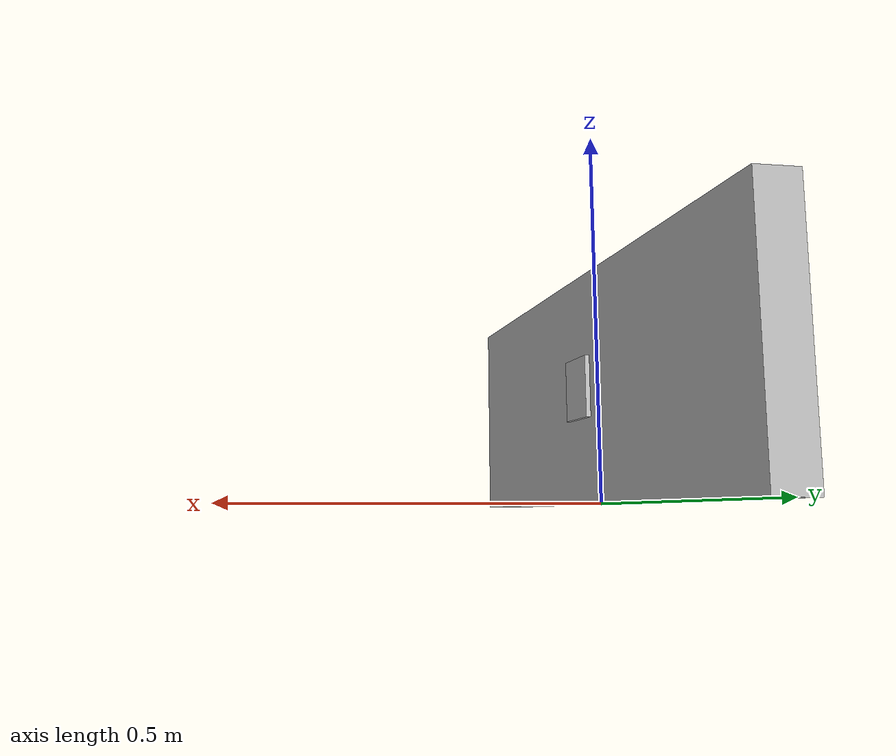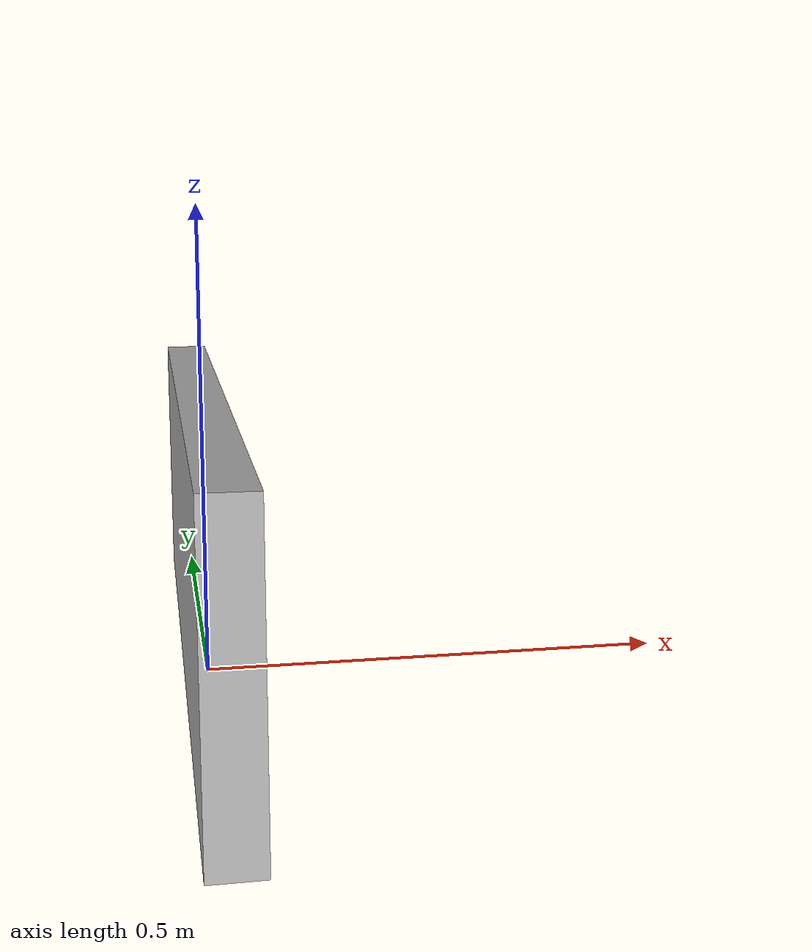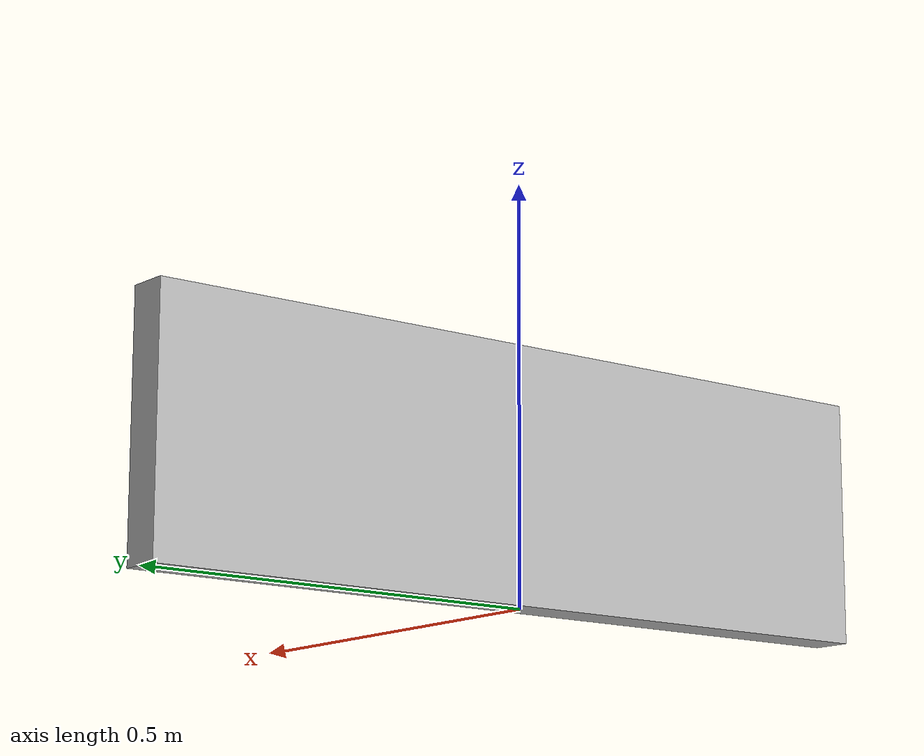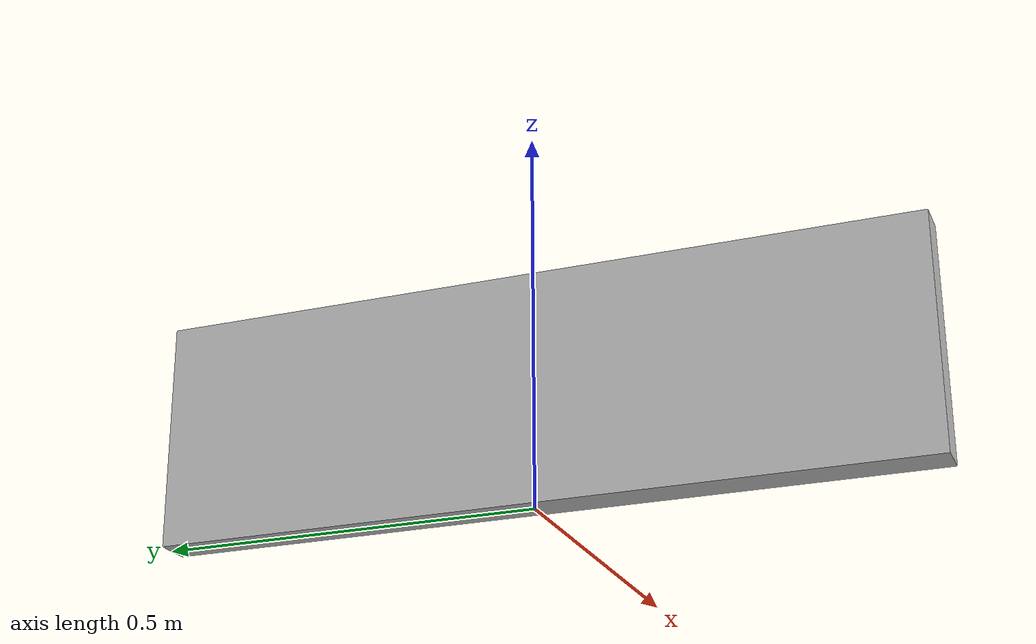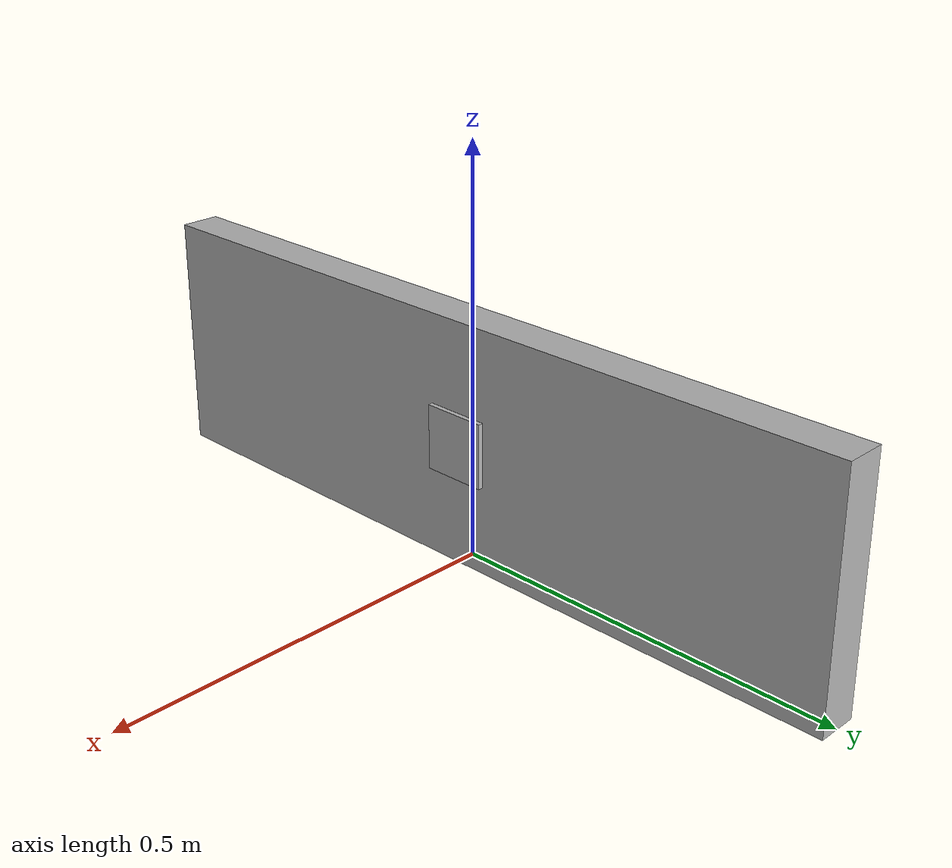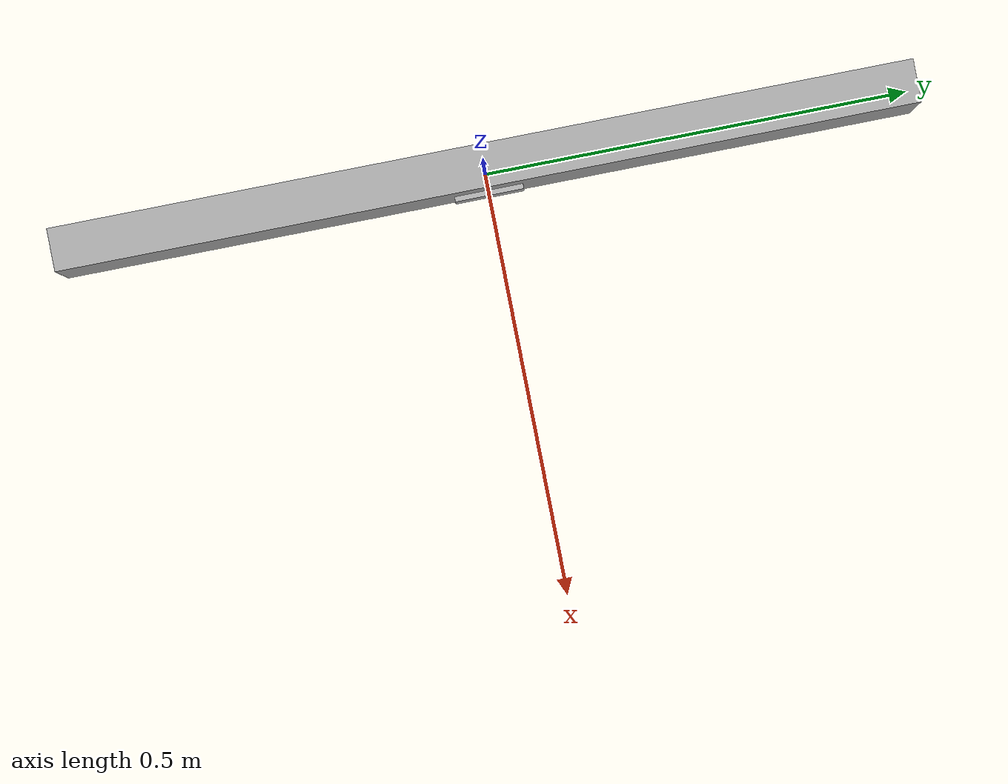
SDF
<?xml version="1.0" ?>
<sdf version="1.5">
  <model name="caja_qr">
    <static>true</static>
    <link name="link">

      <visual name="visual_pared">
        <pose>0 0 0.15 0 0 0</pose>
        <geometry>
          <box><size>0.05 1.0 0.3</size></box>
        </geometry>
        <material>
          <ambient>0.7 0.7 0.7 1</ambient> </material>
      </visual>
      <collision name="collision_pared">
        <pose>0 0 0.15 0 0 0</pose>
        <geometry>
          <box><size>0.05 1.0 0.3</size></box>
        </geometry>
      </collision>

      <visual name="visual_qr">
        <pose>0.026 0 0.15 0 1.5708 0</pose>
        <geometry>
          <box><size>0.08 0.08 0.01</size></box>
        </geometry>
        <material>
          <script>
            <uri>model://caja_qr/materials/scripts</uri>
            <uri>model://caja_qr/materials/textures</uri>
            <name>CodigoQR</name>
          </script>
        </material>
      </visual>
      <collision name="collision_qr">
        <pose>0.026 0 0.15 0 1.5708 0</pose>
        <geometry>
          <box><size>0.08 0.08 0.01</size></box>
        </geometry>
      </collision>

    </link>
  </model>
</sdf>
